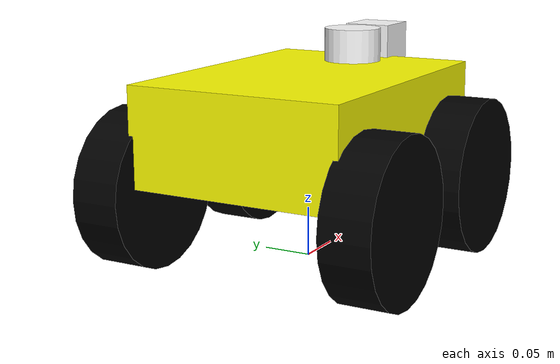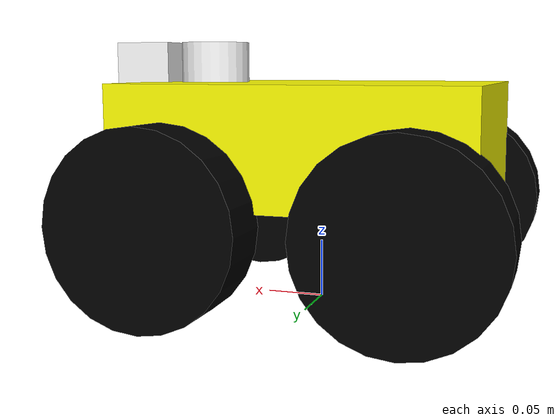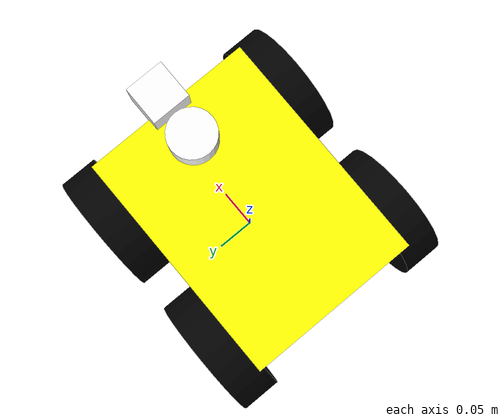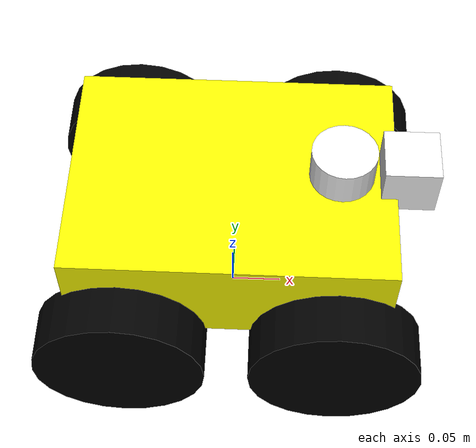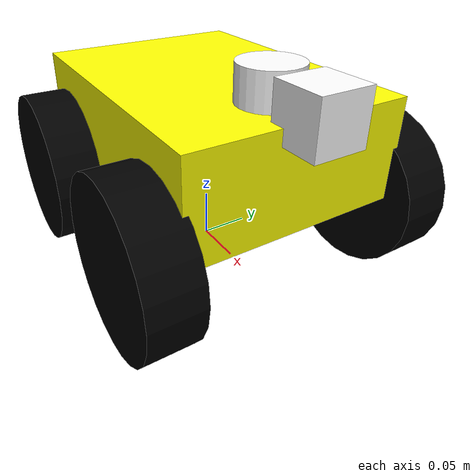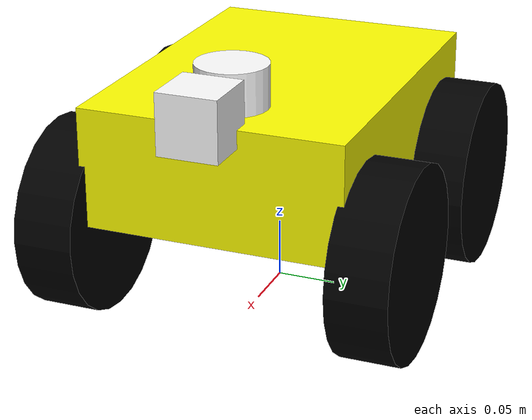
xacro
<?xml version="1.0"?>
<robot name="my_robot" xmlns:xacro="http://www.ros.org/wiki/xacro">

  <material name="yellow">
    <color rgba="1 1 0 1"/>
  </material>
  <material name="black">
    <color rgba="0 0 0 1"/>
  </material>
  <material name="white">
    <color rgba="1 1 1 1"/>
  </material>

  <link name="base_link">
    <visual>
      <origin xyz="0 0 0.14" rpy="0 0 0"/>
      <geometry>
        <box size="0.30 0.22 0.10"/>
      </geometry>
      <material name="yellow"/>
    </visual>
    <collision>
      <origin xyz="0 0 0.14" rpy="0 0 0"/>
      <geometry>
        <box size="0.30 0.22 0.10"/>
      </geometry>
    </collision>
    <inertial>
      <origin xyz="0 0 0.14"/>
      <mass value="3.0"/>
      <inertia ixx="0.05" ixy="0.0" ixz="0.0" iyy="0.05" iyz="0.0" izz="0.05"/>
    </inertial>
  </link>

  <link name="left_wheel">
    <visual>
      <origin xyz="0 0 0" rpy="1.5707 0 0"/>
      <geometry>
        <cylinder radius="0.08" length="0.05"/>
      </geometry>
      <material name="black"/>
    </visual>
    <collision>
      <origin xyz="0 0 0" rpy="1.5707 0 0"/>
      <geometry>
        <cylinder radius="0.08" length="0.05"/>
      </geometry>
    </collision>
    <inertial>
      <mass value="0.8"/>
      <inertia ixx="0.01" ixy="0.0" ixz="0.0" iyy="0.01" iyz="0.0" izz="0.01"/>
    </inertial>
  </link>

  <joint name="left_wheel_joint" type="continuous">
    <origin xyz="0.10 0.13 0.08" rpy="0 0 0"/>
    <parent link="base_link"/>
    <child link="left_wheel"/>
    <axis xyz="0 1 0"/>
  </joint>

  <link name="right_wheel">
    <visual>
      <origin xyz="0 0 0" rpy="1.5707 0 0"/>
      <geometry>
        <cylinder radius="0.08" length="0.05"/>
      </geometry>
      <material name="black"/>
    </visual>
    <collision>
      <origin xyz="0 0 0" rpy="1.5707 0 0"/>
      <geometry>
        <cylinder radius="0.08" length="0.05"/>
      </geometry>
    </collision>
    <inertial>
      <mass value="0.8"/>
      <inertia ixx="0.01" ixy="0.0" ixz="0.0" iyy="0.01" iyz="0.0" izz="0.01"/>
    </inertial>
  </link>

  <joint name="right_wheel_joint" type="continuous">
    <origin xyz="0.10 -0.13 0.08" rpy="0 0 0"/>
    <parent link="base_link"/>
    <child link="right_wheel"/>
    <axis xyz="0 1 0"/>
  </joint>

  <link name="rear_left_wheel">
    <visual>
      <origin xyz="0 0 0" rpy="1.5707 0 0"/>
      <geometry>
        <cylinder radius="0.08" length="0.05"/>
      </geometry>
      <material name="black"/>
    </visual>
    <collision>
      <origin xyz="0 0 0" rpy="1.5707 0 0"/>
      <geometry>
        <cylinder radius="0.08" length="0.05"/>
      </geometry>
    </collision>
    <inertial>
      <mass value="0.8"/>
      <inertia ixx="0.01" ixy="0.0" ixz="0.0" iyy="0.01" iyz="0.0" izz="0.01"/>
    </inertial>
  </link>

  <joint name="rear_left_wheel_joint" type="fixed">
    <origin xyz="-0.10 0.13 0.08" rpy="0 0 0"/>
    <parent link="base_link"/>
    <child link="rear_left_wheel"/>
  </joint>

  <link name="rear_right_wheel">
    <visual>
      <origin xyz="0 0 0" rpy="1.5707 0 0"/>
      <geometry>
        <cylinder radius="0.08" length="0.05"/>
      </geometry>
      <material name="black"/>
    </visual>
    <collision>
      <origin xyz="0 0 0" rpy="1.5707 0 0"/>
      <geometry>
        <cylinder radius="0.08" length="0.05"/>
      </geometry>
    </collision>
    <inertial>
      <mass value="0.8"/>
      <inertia ixx="0.01" ixy="0.0" ixz="0.0" iyy="0.01" iyz="0.0" izz="0.01"/>
    </inertial>
  </link>

  <joint name="rear_right_wheel_joint" type="fixed">
    <origin xyz="-0.10 -0.13 0.08" rpy="0 0 0"/>
    <parent link="base_link"/>
    <child link="rear_right_wheel"/>
  </joint>

  <link name="camera_link">
    <visual>
      <geometry>
        <box size="0.05 0.05 0.05"/>
      </geometry>
      <material name="white"/>
    </visual>
    <collision>
      <geometry>
        <box size="0.05 0.05 0.05"/>
      </geometry>
    </collision>
    <inertial>
      <mass value="0.2"/>
      <inertia ixx="0.001" ixy="0.0" ixz="0.0" iyy="0.001" iyz="0.0" izz="0.001"/>
    </inertial>
  </link>

  <joint name="camera_joint" type="fixed">
    <origin xyz="0.16 0 0.20" rpy="0 0 0"/>
    <parent link="base_link"/>
    <child link="camera_link"/>
  </joint>

  <link name="laser_link">
    <visual>
      <geometry>
        <cylinder radius="0.03" length="0.05"/>
      </geometry>
      <material name="white"/>
    </visual>
    <collision>
      <geometry>
        <cylinder radius="0.03" length="0.05"/>
      </geometry>
    </collision>
    <inertial>
      <mass value="0.2"/>
      <inertia ixx="0.001" ixy="0.0" ixz="0.0" iyy="0.001" iyz="0.0" izz="0.001"/>
    </inertial>
  </link>

  <joint name="laser_joint" type="fixed">
    <origin xyz="0.10 0 0.20" rpy="0 0 0"/>
    <parent link="base_link"/>
    <child link="laser_link"/>
  </joint>

  <xacro:include filename="$(find my_robot)/urdf/my_robot.gazebo"/>

</robot>
